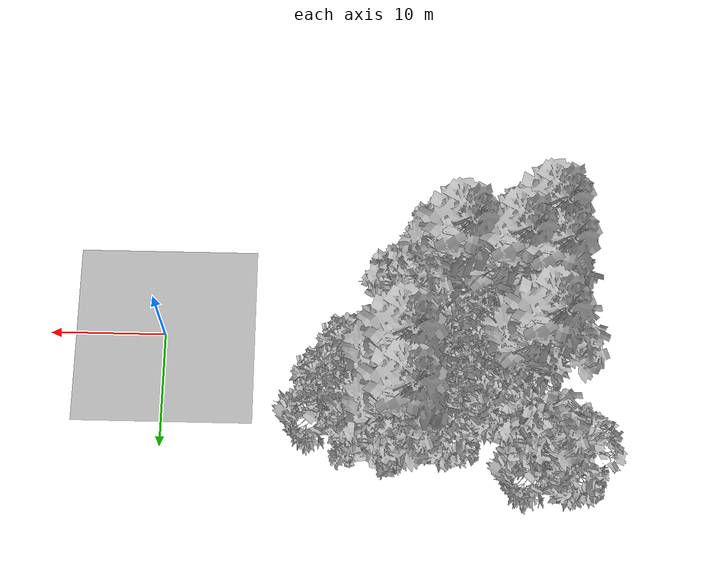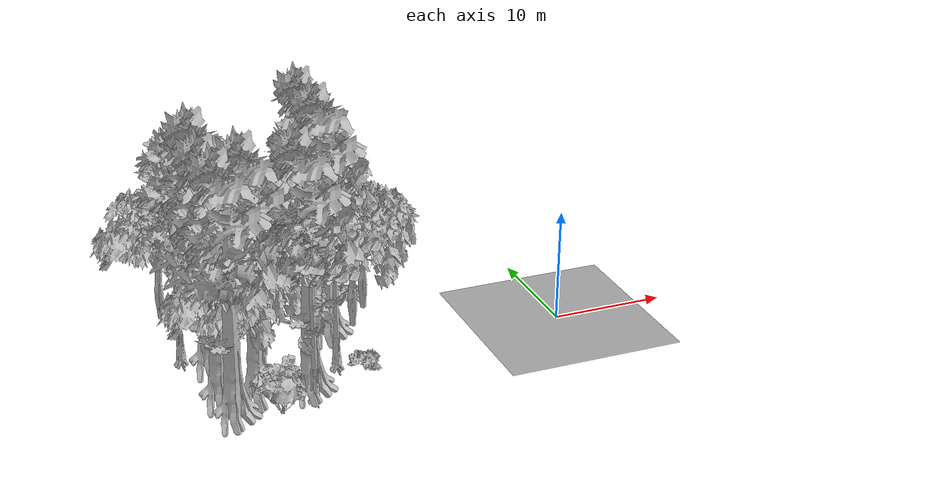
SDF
<sdf version="1.7">
 <world name="default">
  <model name="ground_plane">
   <static>1</static>
   <link name="link">
    <collision name="collision">
     <geometry><plane><normal>0 0 1</normal><size>70 70</size></plane></geometry>
     <surface><contact><ode><min_depth>0.01</min_depth><max_vel>0</max_vel></ode></contact></surface>
    </collision>
    <visual name="grass">
     <cast_shadows>0</cast_shadows>
     <geometry>
      <mesh>
       <scale>0.29000000000000004 0.29000000000000004 0.1</scale>
       <uri>file://grass_plane/meshes/grass_plane.dae</uri>
      </mesh>
     </geometry>
    </visual>
   </link>
  </model>
  <model name="Tree 0">
   <static>1</static>
   <pose>-20.72796595636353 -0.8571599605346449 0 1.57079 -0 0</pose>
   <link name="link">
    <collision name="collision">
     <geometry><mesh><scale>5 5 5</scale><uri>model://tree_9/meshes/tree_9.obj</uri></mesh></geometry>
    </collision>
    <visual name="visual">
     <geometry><mesh><scale>5 5 5</scale><uri>model://tree_9/meshes/tree_9.obj</uri></mesh></geometry>
    </visual>
   </link>
  </model>
  <model name="Tree 17">
   <static>1</static>
   <pose>-25.982245853864192 2.8366336242417916 0 1.57079 -0 0</pose>
   <link name="link">
    <collision name="collision">
     <geometry><mesh><scale>5 5 5</scale><uri>model://tree_2/meshes/tree_2.obj</uri></mesh></geometry>
    </collision>
    <visual name="visual">
     <geometry><mesh><scale>5 5 5</scale><uri>model://tree_2/meshes/tree_2.obj</uri></mesh></geometry>
    </visual>
   </link>
  </model>
  <model name="Tree 18">
   <static>1</static>
   <pose>-30.53831253542078 3.12437608804931 0 1.57079 -0 0</pose>
   <link name="link">
    <collision name="collision">
     <geometry><mesh><scale>5 5 5</scale><uri>model://tree_4/meshes/tree_4.obj</uri></mesh></geometry>
    </collision>
    <visual name="visual">
     <geometry><mesh><scale>5 5 5</scale><uri>model://tree_4/meshes/tree_4.obj</uri></mesh></geometry>
    </visual>
   </link>
  </model>
  <model name="Tree 22">
   <static>1</static>
   <pose>-19.134725700995197 11.781303931295511 0 1.57079 -0 0</pose>
   <link name="link">
    <collision name="collision">
     <geometry><mesh><scale>5 5 5</scale><uri>model://tree_9/meshes/tree_9.obj</uri></mesh></geometry>
    </collision>
    <visual name="visual">
     <geometry><mesh><scale>5 5 5</scale><uri>model://tree_9/meshes/tree_9.obj</uri></mesh></geometry>
    </visual>
   </link>
  </model>
  <model name="Tree 45">
   <static>1</static>
   <pose>-24.08423655181351 -5.035390617257924 0 1.57079 -0 0</pose>
   <link name="link">
    <collision name="collision">
     <geometry><mesh><scale>5 5 5</scale><uri>model://tree_9/meshes/tree_9.obj</uri></mesh></geometry>
    </collision>
    <visual name="visual">
     <geometry><mesh><scale>5 5 5</scale><uri>model://tree_9/meshes/tree_9.obj</uri></mesh></geometry>
    </visual>
   </link>
  </model>
  <model name="Tree 56">
   <static>1</static>
   <pose>-17.25235050121449 5.026775642384621 0 1.57079 -0 0</pose>
   <link name="link">
    <collision name="collision">
     <geometry><mesh><scale>5 5 5</scale><uri>model://tree_2/meshes/tree_2.obj</uri></mesh></geometry>
    </collision>
    <visual name="visual">
     <geometry><mesh><scale>5 5 5</scale><uri>model://tree_2/meshes/tree_2.obj</uri></mesh></geometry>
    </visual>
   </link>
  </model>
  <model name="Tree 77">
   <static>1</static>
   <pose>-32.6120689056515 4.502633925779698 0 1.57079 -0 0</pose>
   <link name="link">
    <collision name="collision">
     <geometry><mesh><scale>5 5 5</scale><uri>model://tree_9/meshes/tree_9.obj</uri></mesh></geometry>
    </collision>
    <visual name="visual">
     <geometry><mesh><scale>5 5 5</scale><uri>model://tree_9/meshes/tree_9.obj</uri></mesh></geometry>
    </visual>
   </link>
  </model>
  <model name="Tree 89">
   <static>1</static>
   <pose>-31.20466105952566 -2.4012920754162437 0 1.57079 -0 0</pose>
   <link name="link">
    <collision name="collision">
     <geometry><mesh><scale>5 5 5</scale><uri>model://tree_4/meshes/tree_4.obj</uri></mesh></geometry>
    </collision>
    <visual name="visual">
     <geometry><mesh><scale>5 5 5</scale><uri>model://tree_4/meshes/tree_4.obj</uri></mesh></geometry>
    </visual>
   </link>
  </model>
  <model name="Tree 115">
   <static>1</static>
   <pose>-15.269032845602997 7.811777163495705 0 1.57079 -0 0</pose>
   <link name="link">
    <collision name="collision">
     <geometry><mesh><scale>5 5 5</scale><uri>model://tree_2/meshes/tree_2.obj</uri></mesh></geometry>
    </collision>
    <visual name="visual">
     <geometry><mesh><scale>5 5 5</scale><uri>model://tree_2/meshes/tree_2.obj</uri></mesh></geometry>
    </visual>
   </link>
  </model>
  <model name="Tree 119">
   <static>1</static>
   <pose>-30.106813448141423 -1.4119104299739575 0 1.57079 -0 0</pose>
   <link name="link">
    <collision name="collision">
     <geometry><mesh><scale>5 5 5</scale><uri>model://tree_2/meshes/tree_2.obj</uri></mesh></geometry>
    </collision>
    <visual name="visual">
     <geometry><mesh><scale>5 5 5</scale><uri>model://tree_2/meshes/tree_2.obj</uri></mesh></geometry>
    </visual>
   </link>
  </model>
  <model name="Tree 125">
   <static>1</static>
   <pose>-30.92147751309647 -5.468750340836191 0 1.57079 -0 0</pose>
   <link name="link">
    <collision name="collision">
     <geometry><mesh><scale>5 5 5</scale><uri>model://tree_4/meshes/tree_4.obj</uri></mesh></geometry>
    </collision>
    <visual name="visual">
     <geometry><mesh><scale>5 5 5</scale><uri>model://tree_4/meshes/tree_4.obj</uri></mesh></geometry>
    </visual>
   </link>
  </model>
  <model name="Tree 127">
   <static>1</static>
   <pose>-28.284611490277534 -3.0857519683865924 0 1.57079 -0 0</pose>
   <link name="link">
    <collision name="collision">
     <geometry><mesh><scale>5 5 5</scale><uri>model://tree_4/meshes/tree_4.obj</uri></mesh></geometry>
    </collision>
    <visual name="visual">
     <geometry><mesh><scale>5 5 5</scale><uri>model://tree_4/meshes/tree_4.obj</uri></mesh></geometry>
    </visual>
   </link>
  </model>
  <model name="Tree 135">
   <static>1</static>
   <pose>-32.493529367929234 12.17293401463531 0 1.57079 -0 0</pose>
   <link name="link">
    <collision name="collision">
     <geometry><mesh><scale>5 5 5</scale><uri>model://tree_2/meshes/tree_2.obj</uri></mesh></geometry>
    </collision>
    <visual name="visual">
     <geometry><mesh><scale>5 5 5</scale><uri>model://tree_2/meshes/tree_2.obj</uri></mesh></geometry>
    </visual>
   </link>
  </model>
  <model name="Tree 142">
   <static>1</static>
   <pose>-26.277453763365312 6.883025241624303 0 1.57079 -0 0</pose>
   <link name="link">
    <collision name="collision">
     <geometry><mesh><scale>5 5 5</scale><uri>model://tree_2/meshes/tree_2.obj</uri></mesh></geometry>
    </collision>
    <visual name="visual">
     <geometry><mesh><scale>5 5 5</scale><uri>model://tree_2/meshes/tree_2.obj</uri></mesh></geometry>
    </visual>
   </link>
  </model>
  <model name="Tree 153">
   <static>1</static>
   <pose>-23.977782998978363 -3.736714235544799 0 1.57079 -0 0</pose>
   <link name="link">
    <collision name="collision">
     <geometry><mesh><scale>5 5 5</scale><uri>model://tree_4/meshes/tree_4.obj</uri></mesh></geometry>
    </collision>
    <visual name="visual">
     <geometry><mesh><scale>5 5 5</scale><uri>model://tree_4/meshes/tree_4.obj</uri></mesh></geometry>
    </visual>
   </link>
  </model>
  <model name="Tree 168">
   <static>1</static>
   <pose>-30.808026649795366 11.546220026524473 0 1.57079 -0 0</pose>
   <link name="link">
    <collision name="collision">
     <geometry><mesh><scale>5 5 5</scale><uri>model://tree_9/meshes/tree_9.obj</uri></mesh></geometry>
    </collision>
    <visual name="visual">
     <geometry><mesh><scale>5 5 5</scale><uri>model://tree_9/meshes/tree_9.obj</uri></mesh></geometry>
    </visual>
   </link>
  </model>
  <model name="Tree 175">
   <static>1</static>
   <pose>-22.585132152085347 9.271107172125404 0 1.57079 -0 0</pose>
   <link name="link">
    <collision name="collision">
     <geometry><mesh><scale>5 5 5</scale><uri>model://tree_2/meshes/tree_2.obj</uri></mesh></geometry>
    </collision>
    <visual name="visual">
     <geometry><mesh><scale>5 5 5</scale><uri>model://tree_2/meshes/tree_2.obj</uri></mesh></geometry>
    </visual>
   </link>
  </model>
  <model name="Tree 194">
   <static>1</static>
   <pose>-19.598059472639914 8.883979735031112 0 1.57079 -0 0</pose>
   <link name="link">
    <collision name="collision">
     <geometry><mesh><scale>5 5 5</scale><uri>model://tree_4/meshes/tree_4.obj</uri></mesh></geometry>
    </collision>
    <visual name="visual">
     <geometry><mesh><scale>5 5 5</scale><uri>model://tree_4/meshes/tree_4.obj</uri></mesh></geometry>
    </visual>
   </link>
  </model>
  <model name="Tree 196">
   <static>1</static>
   <pose>-19.572873667307427 4.727902042200277 0 1.57079 -0 0</pose>
   <link name="link">
    <collision name="collision">
     <geometry><mesh><scale>5 5 5</scale><uri>model://tree_4/meshes/tree_4.obj</uri></mesh></geometry>
    </collision>
    <visual name="visual">
     <geometry><mesh><scale>5 5 5</scale><uri>model://tree_4/meshes/tree_4.obj</uri></mesh></geometry>
    </visual>
   </link>
  </model>
  <model name="Tree 197">
   <static>1</static>
   <pose>-27.9106149538905 4.960953697708391 0 1.57079 -0 0</pose>
   <link name="link">
    <collision name="collision">
     <geometry><mesh><scale>5 5 5</scale><uri>model://tree_2/meshes/tree_2.obj</uri></mesh></geometry>
    </collision>
    <visual name="visual">
     <geometry><mesh><scale>5 5 5</scale><uri>model://tree_2/meshes/tree_2.obj</uri></mesh></geometry>
    </visual>
   </link>
  </model>
  <model name="Bush 17">
   <static>1</static>
   <pose>-27.29467338163058 -6.591881770947612 0 1.57079 -0 0</pose>
   <link name="link">
    <collision name="collision">
     <geometry><mesh><scale>2 2 2</scale><uri>model://bush_1/meshes/bush_1.obj</uri></mesh></geometry>
    </collision>
    <visual name="visual">
     <geometry><mesh><scale>5 5 5</scale><uri>model://bush_1/meshes/bush_1.obj</uri></mesh></geometry>
    </visual>
   </link>
  </model>
  <model name="Bush 35">
   <static>1</static>
   <pose>-24.584558484487232 6.806960155638315 0 1.57079 -0 0</pose>
   <link name="link">
    <collision name="collision">
     <geometry><mesh><scale>2 2 2</scale><uri>model://bush_4/meshes/bush_4.obj</uri></mesh></geometry>
    </collision>
    <visual name="visual">
     <geometry><mesh><scale>5 5 5</scale><uri>model://bush_4/meshes/bush_4.obj</uri></mesh></geometry>
    </visual>
   </link>
  </model>
  <model name="Bush 43">
   <static>1</static>
   <pose>-18.50711616679272 -1.4936575149653706 0 1.57079 -0 0</pose>
   <link name="link">
    <collision name="collision">
     <geometry><mesh><scale>2 2 2</scale><uri>model://bush_2/meshes/bush_2.obj</uri></mesh></geometry>
    </collision>
    <visual name="visual">
     <geometry><mesh><scale>5 5 5</scale><uri>model://bush_2/meshes/bush_2.obj</uri></mesh></geometry>
    </visual>
   </link>
  </model>
  <model name="Bush 49">
   <static>1</static>
   <pose>-19.71185671927582 7.014072554476819 0 1.57079 -0 0</pose>
   <link name="link">
    <collision name="collision">
     <geometry><mesh><scale>2 2 2</scale><uri>model://bush_2/meshes/bush_2.obj</uri></mesh></geometry>
    </collision>
    <visual name="visual">
     <geometry><mesh><scale>5 5 5</scale><uri>model://bush_2/meshes/bush_2.obj</uri></mesh></geometry>
    </visual>
   </link>
  </model>
  <model name="Bush 51">
   <static>1</static>
   <pose>-15.824652145387219 10.33772559131657 0 1.57079 -0 0</pose>
   <link name="link">
    <collision name="collision">
     <geometry><mesh><scale>2 2 2</scale><uri>model://bush_2/meshes/bush_2.obj</uri></mesh></geometry>
    </collision>
    <visual name="visual">
     <geometry><mesh><scale>5 5 5</scale><uri>model://bush_2/meshes/bush_2.obj</uri></mesh></geometry>
    </visual>
   </link>
  </model>
 </world>
</sdf>
